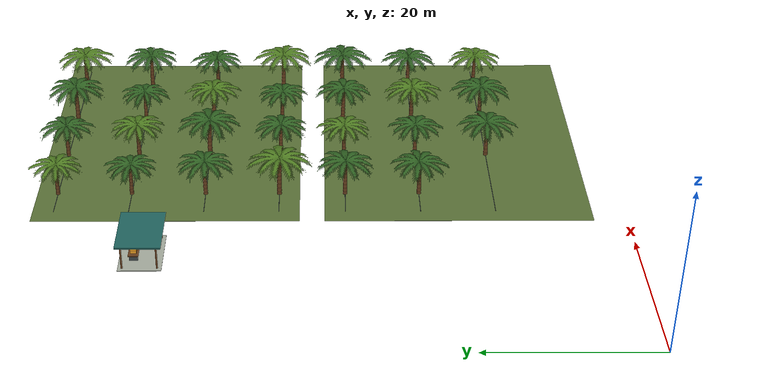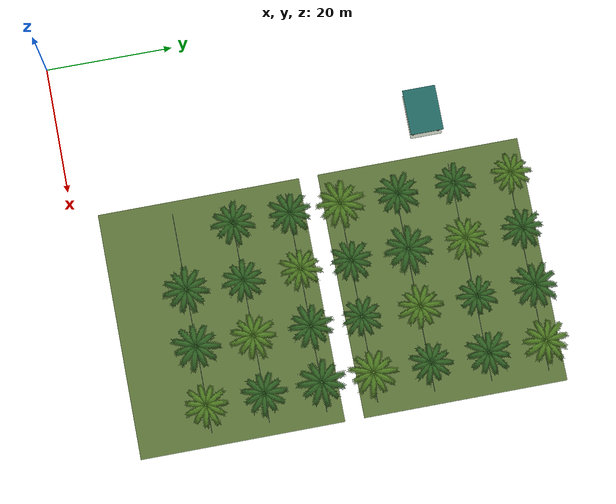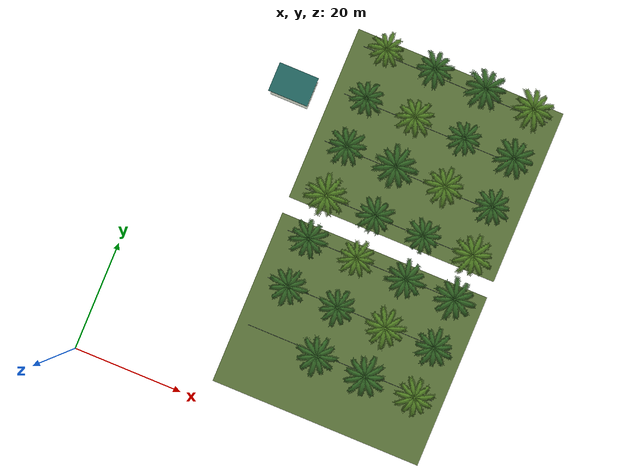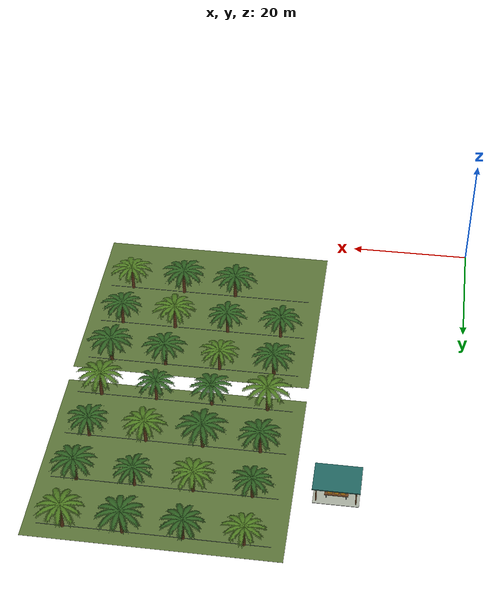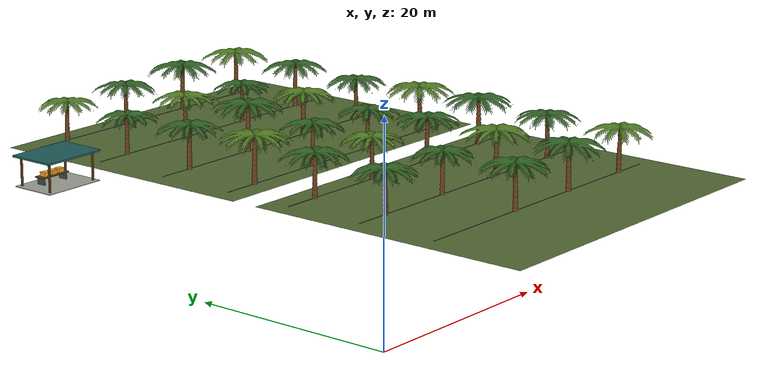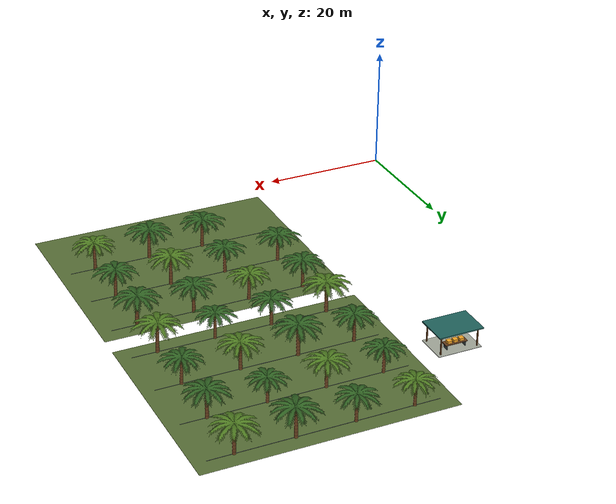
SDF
<sdf version="1.9">
 <world name="fleetscope_estate">
  <model name="plot_44_20">
   <static>true</static>
   <pose>44 20 0 0 0 0</pose>
   <link name="structure">
    <visual name="visual_0">
     <pose>0 0 0.008 0 0 0</pose>
     <geometry><box><size>39 32 0.016</size></box></geometry>
     <material>
      <ambient>0.34 0.43 0.21 1</ambient>
      <diffuse>0.34 0.43 0.21 1</diffuse>
      <specular>.08 .08 .08 1</specular>
     </material>
     <cast_shadows>false</cast_shadows>
    </visual>
    <collision name="collision_0">
     <pose>0 0 0.008 0 0 0</pose>
     <geometry><box><size>39 32 0.016</size></box></geometry>
    </collision>
   </link>
  </model>
  <model name="irrigation_44_20_1">
   <static>true</static>
   <pose>44 15.5 0 0 0 0</pose>
   <link name="structure">
    <visual name="visual_0">
     <pose>0 0 0.04 0 1.570796 0</pose>
     <geometry><cylinder><radius>0.035</radius><length>35</length></cylinder></geometry>
     <material>
      <ambient>0.25 0.29 0.3 1</ambient>
      <diffuse>0.25 0.29 0.3 1</diffuse>
      <specular>.08 .08 .08 1</specular>
     </material>
    </visual>
    <collision name="collision_0">
     <pose>0 0 0.04 0 1.570796 0</pose>
     <geometry><cylinder><radius>0.035</radius><length>35</length></cylinder></geometry>
    </collision>
   </link>
  </model>
  <model name="palm_037">
   <static>true</static>
   <pose>39.5 15.5 0 0 0 1.932879</pose>
   <link name="structure">
    <visual name="visual_0">
     <geometry>
      <mesh><uri>model://estate_palm/meshes/trunk.obj</uri><scale>1.047346 1.047346 1.047346</scale></mesh>
     </geometry>
     <material>
      <ambient>0.4 0.24 0.11 1</ambient>
      <diffuse>0.4 0.24 0.11 1</diffuse>
      <specular>.08 .08 .08 1</specular>
     </material>
    </visual>
    <visual name="visual_1">
     <geometry>
      <mesh><uri>model://estate_palm/meshes/fronds.obj</uri><scale>1.047346 1.047346 1.047346</scale></mesh>
     </geometry>
     <material>
      <ambient>0.17 0.36 0.12 1</ambient>
      <diffuse>0.17 0.36 0.12 1</diffuse>
      <specular>.08 .08 .08 1</specular>
     </material>
    </visual>
    <collision name="collision_2">
     <pose>0 0 2.356528 0 0 0</pose>
     <geometry>
      <cylinder><radius>0.2723099248789104</radius><length>4.713056392134988</length></cylinder>
     </geometry>
    </collision>
   </link>
  </model>
  <model name="palm_038">
   <static>true</static>
   <pose>48.5 15.5 0 0 0 3.153528</pose>
   <link name="structure">
    <visual name="visual_0">
     <geometry>
      <mesh><uri>model://estate_palm/meshes/trunk.obj</uri><scale>1.075956 1.075956 1.075956</scale></mesh>
     </geometry>
     <material>
      <ambient>0.4 0.24 0.11 1</ambient>
      <diffuse>0.4 0.24 0.11 1</diffuse>
      <specular>.08 .08 .08 1</specular>
     </material>
    </visual>
    <visual name="visual_1">
     <geometry>
      <mesh><uri>model://estate_palm/meshes/fronds.obj</uri><scale>1.075956 1.075956 1.075956</scale></mesh>
     </geometry>
     <material>
      <ambient>0.17 0.36 0.12 1</ambient>
      <diffuse>0.17 0.36 0.12 1</diffuse>
      <specular>.08 .08 .08 1</specular>
     </material>
    </visual>
    <collision name="collision_2">
     <pose>0 0 2.420902 0 0 0</pose>
     <geometry>
      <cylinder><radius>0.27974867455214686</radius><length>4.841803982633311</length></cylinder>
     </geometry>
    </collision>
   </link>
  </model>
  <model name="palm_039">
   <static>true</static>
   <pose>57.5 15.5 0 0 0 5.557164</pose>
   <link name="structure">
    <visual name="visual_0">
     <geometry>
      <mesh><uri>model://estate_palm/meshes/trunk.obj</uri><scale>1.005356 1.005356 1.005356</scale></mesh>
     </geometry>
     <material>
      <ambient>0.4 0.24 0.11 1</ambient>
      <diffuse>0.4 0.24 0.11 1</diffuse>
      <specular>.08 .08 .08 1</specular>
     </material>
    </visual>
    <visual name="visual_1">
     <geometry>
      <mesh><uri>model://estate_palm/meshes/fronds.obj</uri><scale>1.005356 1.005356 1.005356</scale></mesh>
     </geometry>
     <material>
      <ambient>0.29 0.46 0.12 1</ambient>
      <diffuse>0.29 0.46 0.12 1</diffuse>
      <specular>.08 .08 .08 1</specular>
     </material>
    </visual>
    <collision name="collision_2">
     <pose>0 0 2.262052 0 0 0</pose>
     <geometry>
      <cylinder><radius>0.2613926742258665</radius><length>4.524103976986151</length></cylinder>
     </geometry>
    </collision>
   </link>
  </model>
  <model name="irrigation_44_20_2">
   <static>true</static>
   <pose>44 24.5 0 0 0 0</pose>
   <link name="structure">
    <visual name="visual_0">
     <pose>0 0 0.04 0 1.570796 0</pose>
     <geometry><cylinder><radius>0.035</radius><length>35</length></cylinder></geometry>
     <material>
      <ambient>0.25 0.29 0.3 1</ambient>
      <diffuse>0.25 0.29 0.3 1</diffuse>
      <specular>.08 .08 .08 1</specular>
     </material>
    </visual>
    <collision name="collision_0">
     <pose>0 0 0.04 0 1.570796 0</pose>
     <geometry><cylinder><radius>0.035</radius><length>35</length></cylinder></geometry>
    </collision>
   </link>
  </model>
  <model name="palm_040">
   <static>true</static>
   <pose>30.5 24.5 0 0 0 1.849607</pose>
   <link name="structure">
    <visual name="visual_0">
     <geometry>
      <mesh><uri>model://estate_palm/meshes/trunk.obj</uri><scale>0.9952747 0.9952747 0.9952747</scale></mesh>
     </geometry>
     <material>
      <ambient>0.4 0.24 0.11 1</ambient>
      <diffuse>0.4 0.24 0.11 1</diffuse>
      <specular>.08 .08 .08 1</specular>
     </material>
    </visual>
    <visual name="visual_1">
     <geometry>
      <mesh><uri>model://estate_palm/meshes/fronds.obj</uri><scale>0.9952747 0.9952747 0.9952747</scale></mesh>
     </geometry>
     <material>
      <ambient>0.17 0.36 0.12 1</ambient>
      <diffuse>0.17 0.36 0.12 1</diffuse>
      <specular>.08 .08 .08 1</specular>
     </material>
    </visual>
    <collision name="collision_2">
     <pose>0 0 2.239368 0 0 0</pose>
     <geometry><cylinder><radius>0.2587714227645457</radius><length>4.47873616323252</length></cylinder></geometry>
    </collision>
   </link>
  </model>
  <model name="palm_041">
   <static>true</static>
   <pose>39.5 24.5 0 0 0 0.2080316</pose>
   <link name="structure">
    <visual name="visual_0">
     <geometry>
      <mesh><uri>model://estate_palm/meshes/trunk.obj</uri><scale>0.9591879 0.9591879 0.9591879</scale></mesh>
     </geometry>
     <material>
      <ambient>0.4 0.24 0.11 1</ambient>
      <diffuse>0.4 0.24 0.11 1</diffuse>
      <specular>.08 .08 .08 1</specular>
     </material>
    </visual>
    <visual name="visual_1">
     <geometry>
      <mesh><uri>model://estate_palm/meshes/fronds.obj</uri><scale>0.9591879 0.9591879 0.9591879</scale></mesh>
     </geometry>
     <material>
      <ambient>0.17 0.36 0.12 1</ambient>
      <diffuse>0.17 0.36 0.12 1</diffuse>
      <specular>.08 .08 .08 1</specular>
     </material>
    </visual>
    <collision name="collision_2">
     <pose>0 0 2.158173 0 0 0</pose>
     <geometry>
      <cylinder><radius>0.2493888555089432</radius><length>4.3163455761163245</length></cylinder>
     </geometry>
    </collision>
   </link>
  </model>
  <model name="palm_042">
   <static>true</static>
   <pose>48.5 24.5 0 0 0 3.752778</pose>
   <link name="structure">
    <visual name="visual_0">
     <geometry>
      <mesh><uri>model://estate_palm/meshes/trunk.obj</uri><scale>1.044241 1.044241 1.044241</scale></mesh>
     </geometry>
     <material>
      <ambient>0.4 0.24 0.11 1</ambient>
      <diffuse>0.4 0.24 0.11 1</diffuse>
      <specular>.08 .08 .08 1</specular>
     </material>
    </visual>
    <visual name="visual_1">
     <geometry>
      <mesh><uri>model://estate_palm/meshes/fronds.obj</uri><scale>1.044241 1.044241 1.044241</scale></mesh>
     </geometry>
     <material>
      <ambient>0.29 0.46 0.12 1</ambient>
      <diffuse>0.29 0.46 0.12 1</diffuse>
      <specular>.08 .08 .08 1</specular>
     </material>
    </visual>
    <collision name="collision_2">
     <pose>0 0 2.349543 0 0 0</pose>
     <geometry>
      <cylinder><radius>0.2715027629975437</radius><length>4.6990862826497946</length></cylinder>
     </geometry>
    </collision>
   </link>
  </model>
  <model name="palm_043">
   <static>true</static>
   <pose>57.5 24.5 0 0 0 3.285407</pose>
   <link name="structure">
    <visual name="visual_0">
     <geometry>
      <mesh><uri>model://estate_palm/meshes/trunk.obj</uri><scale>1.00081 1.00081 1.00081</scale></mesh>
     </geometry>
     <material>
      <ambient>0.4 0.24 0.11 1</ambient>
      <diffuse>0.4 0.24 0.11 1</diffuse>
      <specular>.08 .08 .08 1</specular>
     </material>
    </visual>
    <visual name="visual_1">
     <geometry>
      <mesh><uri>model://estate_palm/meshes/fronds.obj</uri><scale>1.00081 1.00081 1.00081</scale></mesh>
     </geometry>
     <material>
      <ambient>0.17 0.36 0.12 1</ambient>
      <diffuse>0.17 0.36 0.12 1</diffuse>
      <specular>.08 .08 .08 1</specular>
     </material>
    </visual>
    <collision name="collision_2">
     <pose>0 0 2.251823 0 0 0</pose>
     <geometry>
      <cylinder><radius>0.26021061037751203</radius><length>4.5036451796107855</length></cylinder>
     </geometry>
    </collision>
   </link>
  </model>
  <model name="irrigation_44_20_3">
   <static>true</static>
   <pose>44 33.5 0 0 0 0</pose>
   <link name="structure">
    <visual name="visual_0">
     <pose>0 0 0.04 0 1.570796 0</pose>
     <geometry><cylinder><radius>0.035</radius><length>35</length></cylinder></geometry>
     <material>
      <ambient>0.25 0.29 0.3 1</ambient>
      <diffuse>0.25 0.29 0.3 1</diffuse>
      <specular>.08 .08 .08 1</specular>
     </material>
    </visual>
    <collision name="collision_0">
     <pose>0 0 0.04 0 1.570796 0</pose>
     <geometry><cylinder><radius>0.035</radius><length>35</length></cylinder></geometry>
    </collision>
   </link>
  </model>
  <model name="palm_044">
   <static>true</static>
   <pose>30.5 33.5 0 0 0 5.790016</pose>
   <link name="structure">
    <visual name="visual_0">
     <geometry>
      <mesh><uri>model://estate_palm/meshes/trunk.obj</uri><scale>1.007694 1.007694 1.007694</scale></mesh>
     </geometry>
     <material>
      <ambient>0.4 0.24 0.11 1</ambient>
      <diffuse>0.4 0.24 0.11 1</diffuse>
      <specular>.08 .08 .08 1</specular>
     </material>
    </visual>
    <visual name="visual_1">
     <geometry>
      <mesh><uri>model://estate_palm/meshes/fronds.obj</uri><scale>1.007694 1.007694 1.007694</scale></mesh>
     </geometry>
     <material>
      <ambient>0.17 0.36 0.12 1</ambient>
      <diffuse>0.17 0.36 0.12 1</diffuse>
      <specular>.08 .08 .08 1</specular>
     </material>
    </visual>
    <collision name="collision_2">
     <pose>0 0 2.267311 0 0 0</pose>
     <geometry>
      <cylinder><radius>0.26200040257415425</radius><length>4.534622352244977</length></cylinder>
     </geometry>
    </collision>
   </link>
  </model>
  <model name="palm_045">
   <static>true</static>
   <pose>39.5 33.5 0 0 0 3.050921</pose>
   <link name="structure">
    <visual name="visual_0">
     <geometry>
      <mesh><uri>model://estate_palm/meshes/trunk.obj</uri><scale>0.9572243 0.9572243 0.9572243</scale></mesh>
     </geometry>
     <material>
      <ambient>0.4 0.24 0.11 1</ambient>
      <diffuse>0.4 0.24 0.11 1</diffuse>
      <specular>.08 .08 .08 1</specular>
     </material>
    </visual>
    <visual name="visual_1">
     <geometry>
      <mesh><uri>model://estate_palm/meshes/fronds.obj</uri><scale>0.9572243 0.9572243 0.9572243</scale></mesh>
     </geometry>
     <material>
      <ambient>0.29 0.46 0.12 1</ambient>
      <diffuse>0.29 0.46 0.12 1</diffuse>
      <specular>.08 .08 .08 1</specular>
     </material>
    </visual>
    <collision name="collision_2">
     <pose>0 0 2.153755 0 0 0</pose>
     <geometry>
      <cylinder><radius>0.24887832160308557</radius><length>4.307509412361096</length></cylinder>
     </geometry>
    </collision>
   </link>
  </model>
  <model name="palm_046">
   <static>true</static>
   <pose>48.5 33.5 0 0 0 5.191001</pose>
   <link name="structure">
    <visual name="visual_0">
     <geometry>
      <mesh><uri>model://estate_palm/meshes/trunk.obj</uri><scale>1.012479 1.012479 1.012479</scale></mesh>
     </geometry>
     <material>
      <ambient>0.4 0.24 0.11 1</ambient>
      <diffuse>0.4 0.24 0.11 1</diffuse>
      <specular>.08 .08 .08 1</specular>
     </material>
    </visual>
    <visual name="visual_1">
     <geometry>
      <mesh><uri>model://estate_palm/meshes/fronds.obj</uri><scale>1.012479 1.012479 1.012479</scale></mesh>
     </geometry>
     <material>
      <ambient>0.17 0.36 0.12 1</ambient>
      <diffuse>0.17 0.36 0.12 1</diffuse>
      <specular>.08 .08 .08 1</specular>
     </material>
    </visual>
    <collision name="collision_2">
     <pose>0 0 2.278077 0 0 0</pose>
     <geometry>
      <cylinder><radius>0.26324445988130146</radius><length>4.5561541133302175</length></cylinder>
     </geometry>
    </collision>
   </link>
  </model>
  <model name="palm_047">
   <static>true</static>
   <pose>57.5 33.5 0 0 0 3.505</pose>
   <link name="structure">
    <visual name="visual_0">
     <geometry>
      <mesh><uri>model://estate_palm/meshes/trunk.obj</uri><scale>1.077751 1.077751 1.077751</scale></mesh>
     </geometry>
     <material>
      <ambient>0.4 0.24 0.11 1</ambient>
      <diffuse>0.4 0.24 0.11 1</diffuse>
      <specular>.08 .08 .08 1</specular>
     </material>
    </visual>
    <visual name="visual_1">
     <geometry>
      <mesh><uri>model://estate_palm/meshes/fronds.obj</uri><scale>1.077751 1.077751 1.077751</scale></mesh>
     </geometry>
     <material>
      <ambient>0.17 0.36 0.12 1</ambient>
      <diffuse>0.17 0.36 0.12 1</diffuse>
      <specular>.08 .08 .08 1</specular>
     </material>
    </visual>
    <collision name="collision_2">
     <pose>0 0 2.42494 0 0 0</pose>
     <geometry>
      <cylinder><radius>0.28021527062682755</radius><length>4.849879683925861</length></cylinder>
     </geometry>
    </collision>
   </link>
  </model>
  <model name="plot_44_55">
   <static>true</static>
   <pose>44 55 0 0 0 0</pose>
   <link name="structure">
    <visual name="visual_0">
     <pose>0 0 0.008 0 0 0</pose>
     <geometry><box><size>39 32 0.016</size></box></geometry>
     <material>
      <ambient>0.34 0.43 0.21 1</ambient>
      <diffuse>0.34 0.43 0.21 1</diffuse>
      <specular>.08 .08 .08 1</specular>
     </material>
     <cast_shadows>false</cast_shadows>
    </visual>
    <collision name="collision_0">
     <pose>0 0 0.008 0 0 0</pose>
     <geometry><box><size>39 32 0.016</size></box></geometry>
    </collision>
   </link>
  </model>
  <model name="irrigation_44_55_0">
   <static>true</static>
   <pose>44 41.5 0 0 0 0</pose>
   <link name="structure">
    <visual name="visual_0">
     <pose>0 0 0.04 0 1.570796 0</pose>
     <geometry><cylinder><radius>0.035</radius><length>35</length></cylinder></geometry>
     <material>
      <ambient>0.25 0.29 0.3 1</ambient>
      <diffuse>0.25 0.29 0.3 1</diffuse>
      <specular>.08 .08 .08 1</specular>
     </material>
    </visual>
    <collision name="collision_0">
     <pose>0 0 0.04 0 1.570796 0</pose>
     <geometry><cylinder><radius>0.035</radius><length>35</length></cylinder></geometry>
    </collision>
   </link>
  </model>
  <model name="palm_048">
   <static>true</static>
   <pose>30.5 41.5 0 0 0 5.223859</pose>
   <link name="structure">
    <visual name="visual_0">
     <geometry>
      <mesh><uri>model://estate_palm/meshes/trunk.obj</uri><scale>1.099599 1.099599 1.099599</scale></mesh>
     </geometry>
     <material>
      <ambient>0.4 0.24 0.11 1</ambient>
      <diffuse>0.4 0.24 0.11 1</diffuse>
      <specular>.08 .08 .08 1</specular>
     </material>
    </visual>
    <visual name="visual_1">
     <geometry>
      <mesh><uri>model://estate_palm/meshes/fronds.obj</uri><scale>1.099599 1.099599 1.099599</scale></mesh>
     </geometry>
     <material>
      <ambient>0.29 0.46 0.12 1</ambient>
      <diffuse>0.29 0.46 0.12 1</diffuse>
      <specular>.08 .08 .08 1</specular>
     </material>
    </visual>
    <collision name="collision_2">
     <pose>0 0 2.474097 0 0 0</pose>
     <geometry>
      <cylinder><radius>0.28589562790932554</radius><length>4.948193559969096</length></cylinder>
     </geometry>
    </collision>
   </link>
  </model>
  <model name="palm_049">
   <static>true</static>
   <pose>39.5 41.5 0 0 0 5.760498</pose>
   <link name="structure">
    <visual name="visual_0">
     <geometry>
      <mesh><uri>model://estate_palm/meshes/trunk.obj</uri><scale>0.9696646 0.9696646 0.9696646</scale></mesh>
     </geometry>
     <material>
      <ambient>0.4 0.24 0.11 1</ambient>
      <diffuse>0.4 0.24 0.11 1</diffuse>
      <specular>.08 .08 .08 1</specular>
     </material>
    </visual>
    <visual name="visual_1">
     <geometry>
      <mesh><uri>model://estate_palm/meshes/fronds.obj</uri><scale>0.9696646 0.9696646 0.9696646</scale></mesh>
     </geometry>
     <material>
      <ambient>0.17 0.36 0.12 1</ambient>
      <diffuse>0.17 0.36 0.12 1</diffuse>
      <specular>.08 .08 .08 1</specular>
     </material>
    </visual>
    <collision name="collision_2">
     <pose>0 0 2.181745 0 0 0</pose>
     <geometry>
      <cylinder><radius>0.2521127865208529</radius><length>4.363490535937839</length></cylinder>
     </geometry>
    </collision>
   </link>
  </model>
  <model name="palm_050">
   <static>true</static>
   <pose>48.5 41.5 0 0 0 4.331208</pose>
   <link name="structure">
    <visual name="visual_0">
     <geometry>
      <mesh><uri>model://estate_palm/meshes/trunk.obj</uri><scale>0.9216423 0.9216423 0.9216423</scale></mesh>
     </geometry>
     <material>
      <ambient>0.4 0.24 0.11 1</ambient>
      <diffuse>0.4 0.24 0.11 1</diffuse>
      <specular>.08 .08 .08 1</specular>
     </material>
    </visual>
    <visual name="visual_1">
     <geometry>
      <mesh><uri>model://estate_palm/meshes/fronds.obj</uri><scale>0.9216423 0.9216423 0.9216423</scale></mesh>
     </geometry>
     <material>
      <ambient>0.17 0.36 0.12 1</ambient>
      <diffuse>0.17 0.36 0.12 1</diffuse>
      <specular>.08 .08 .08 1</specular>
     </material>
    </visual>
    <collision name="collision_2">
     <pose>0 0 2.073695 0 0 0</pose>
     <geometry>
      <cylinder><radius>0.2396269922307089</radius><length>4.147390250146885</length></cylinder>
     </geometry>
    </collision>
   </link>
  </model>
  <model name="palm_051">
   <static>true</static>
   <pose>57.5 41.5 0 0 0 3.23693</pose>
   <link name="structure">
    <visual name="visual_0">
     <geometry>
      <mesh><uri>model://estate_palm/meshes/trunk.obj</uri><scale>1.072718 1.072718 1.072718</scale></mesh>
     </geometry>
     <material>
      <ambient>0.4 0.24 0.11 1</ambient>
      <diffuse>0.4 0.24 0.11 1</diffuse>
      <specular>.08 .08 .08 1</specular>
     </material>
    </visual>
    <visual name="visual_1">
     <geometry>
      <mesh><uri>model://estate_palm/meshes/fronds.obj</uri><scale>1.072718 1.072718 1.072718</scale></mesh>
     </geometry>
     <material>
      <ambient>0.29 0.46 0.12 1</ambient>
      <diffuse>0.29 0.46 0.12 1</diffuse>
      <specular>.08 .08 .08 1</specular>
     </material>
    </visual>
    <collision name="collision_2">
     <pose>0 0 2.413617 0 0 0</pose>
     <geometry>
      <cylinder><radius>0.27890680658697314</radius><length>4.827233190928381</length></cylinder>
     </geometry>
    </collision>
   </link>
  </model>
  <model name="irrigation_44_55_1">
   <static>true</static>
   <pose>44 50.5 0 0 0 0</pose>
   <link name="structure">
    <visual name="visual_0">
     <pose>0 0 0.04 0 1.570796 0</pose>
     <geometry><cylinder><radius>0.035</radius><length>35</length></cylinder></geometry>
     <material>
      <ambient>0.25 0.29 0.3 1</ambient>
      <diffuse>0.25 0.29 0.3 1</diffuse>
      <specular>.08 .08 .08 1</specular>
     </material>
    </visual>
    <collision name="collision_0">
     <pose>0 0 0.04 0 1.570796 0</pose>
     <geometry><cylinder><radius>0.035</radius><length>35</length></cylinder></geometry>
    </collision>
   </link>
  </model>
  <model name="palm_052">
   <static>true</static>
   <pose>30.5 50.5 0 0 0 6.064959</pose>
   <link name="structure">
    <visual name="visual_0">
     <geometry>
      <mesh><uri>model://estate_palm/meshes/trunk.obj</uri><scale>0.9996426 0.9996426 0.9996426</scale></mesh>
     </geometry>
     <material>
      <ambient>0.4 0.24 0.11 1</ambient>
      <diffuse>0.4 0.24 0.11 1</diffuse>
      <specular>.08 .08 .08 1</specular>
     </material>
    </visual>
    <visual name="visual_1">
     <geometry>
      <mesh><uri>model://estate_palm/meshes/fronds.obj</uri><scale>0.9996426 0.9996426 0.9996426</scale></mesh>
     </geometry>
     <material>
      <ambient>0.17 0.36 0.12 1</ambient>
      <diffuse>0.17 0.36 0.12 1</diffuse>
      <specular>.08 .08 .08 1</specular>
     </material>
    </visual>
    <collision name="collision_2">
     <pose>0 0 2.249196 0 0 0</pose>
     <geometry>
      <cylinder><radius>0.25990706429732385</radius><length>4.498391497453682</length></cylinder>
     </geometry>
    </collision>
   </link>
  </model>
  <model name="palm_053">
   <static>true</static>
   <pose>39.5 50.5 0 0 0 5.293205</pose>
   <link name="structure">
    <visual name="visual_0">
     <geometry>
      <mesh><uri>model://estate_palm/meshes/trunk.obj</uri><scale>1.112799 1.112799 1.112799</scale></mesh>
     </geometry>
     <material>
      <ambient>0.4 0.24 0.11 1</ambient>
      <diffuse>0.4 0.24 0.11 1</diffuse>
      <specular>.08 .08 .08 1</specular>
     </material>
    </visual>
    <visual name="visual_1">
     <geometry>
      <mesh><uri>model://estate_palm/meshes/fronds.obj</uri><scale>1.112799 1.112799 1.112799</scale></mesh>
     </geometry>
     <material>
      <ambient>0.17 0.36 0.12 1</ambient>
      <diffuse>0.17 0.36 0.12 1</diffuse>
      <specular>.08 .08 .08 1</specular>
     </material>
    </visual>
    <collision name="collision_2">
     <pose>0 0 2.503798 0 0 0</pose>
     <geometry>
      <cylinder><radius>0.28932771728302853</radius><length>5.007595106821648</length></cylinder>
     </geometry>
    </collision>
   </link>
  </model>
  <model name="palm_054">
   <static>true</static>
   <pose>48.5 50.5 0 0 0 0.4039784</pose>
   <link name="structure">
    <visual name="visual_0">
     <geometry>
      <mesh><uri>model://estate_palm/meshes/trunk.obj</uri><scale>1.005412 1.005412 1.005412</scale></mesh>
     </geometry>
     <material>
      <ambient>0.4 0.24 0.11 1</ambient>
      <diffuse>0.4 0.24 0.11 1</diffuse>
      <specular>.08 .08 .08 1</specular>
     </material>
    </visual>
    <visual name="visual_1">
     <geometry>
      <mesh><uri>model://estate_palm/meshes/fronds.obj</uri><scale>1.005412 1.005412 1.005412</scale></mesh>
     </geometry>
     <material>
      <ambient>0.29 0.46 0.12 1</ambient>
      <diffuse>0.29 0.46 0.12 1</diffuse>
      <specular>.08 .08 .08 1</specular>
     </material>
    </visual>
    <collision name="collision_2">
     <pose>0 0 2.262177 0 0 0</pose>
     <geometry>
      <cylinder><radius>0.26140716545116816</radius><length>4.5243547866548335</length></cylinder>
     </geometry>
    </collision>
   </link>
  </model>
  <model name="palm_055">
   <static>true</static>
   <pose>57.5 50.5 0 0 0 3.13167</pose>
   <link name="structure">
    <visual name="visual_0">
     <geometry>
      <mesh><uri>model://estate_palm/meshes/trunk.obj</uri><scale>0.9586226 0.9586226 0.9586226</scale></mesh>
     </geometry>
     <material>
      <ambient>0.4 0.24 0.11 1</ambient>
      <diffuse>0.4 0.24 0.11 1</diffuse>
      <specular>.08 .08 .08 1</specular>
     </material>
    </visual>
    <visual name="visual_1">
     <geometry>
      <mesh><uri>model://estate_palm/meshes/fronds.obj</uri><scale>0.9586226 0.9586226 0.9586226</scale></mesh>
     </geometry>
     <material>
      <ambient>0.17 0.36 0.12 1</ambient>
      <diffuse>0.17 0.36 0.12 1</diffuse>
      <specular>.08 .08 .08 1</specular>
     </material>
    </visual>
    <collision name="collision_2">
     <pose>0 0 2.156901 0 0 0</pose>
     <geometry><cylinder><radius>0.249241863209506</radius><length>4.313801478626066</length></cylinder></geometry>
    </collision>
   </link>
  </model>
  <model name="irrigation_44_55_2">
   <static>true</static>
   <pose>44 59.5 0 0 0 0</pose>
   <link name="structure">
    <visual name="visual_0">
     <pose>0 0 0.04 0 1.570796 0</pose>
     <geometry><cylinder><radius>0.035</radius><length>35</length></cylinder></geometry>
     <material>
      <ambient>0.25 0.29 0.3 1</ambient>
      <diffuse>0.25 0.29 0.3 1</diffuse>
      <specular>.08 .08 .08 1</specular>
     </material>
    </visual>
    <collision name="collision_0">
     <pose>0 0 0.04 0 1.570796 0</pose>
     <geometry><cylinder><radius>0.035</radius><length>35</length></cylinder></geometry>
    </collision>
   </link>
  </model>
  <model name="palm_056">
   <static>true</static>
   <pose>30.5 59.5 0 0 0 4.697003</pose>
   <link name="structure">
    <visual name="visual_0">
     <geometry>
      <mesh><uri>model://estate_palm/meshes/trunk.obj</uri><scale>0.9212658 0.9212658 0.9212658</scale></mesh>
     </geometry>
     <material>
      <ambient>0.4 0.24 0.11 1</ambient>
      <diffuse>0.4 0.24 0.11 1</diffuse>
      <specular>.08 .08 .08 1</specular>
     </material>
    </visual>
    <visual name="visual_1">
     <geometry>
      <mesh><uri>model://estate_palm/meshes/fronds.obj</uri><scale>0.9212658 0.9212658 0.9212658</scale></mesh>
     </geometry>
     <material>
      <ambient>0.17 0.36 0.12 1</ambient>
      <diffuse>0.17 0.36 0.12 1</diffuse>
      <specular>.08 .08 .08 1</specular>
     </material>
    </visual>
    <collision name="collision_2">
     <pose>0 0 2.072848 0 0 0</pose>
     <geometry>
      <cylinder><radius>0.23952909758337107</radius><length>4.145695919712192</length></cylinder>
     </geometry>
    </collision>
   </link>
  </model>
  <model name="palm_057">
   <static>true</static>
   <pose>39.5 59.5 0 0 0 2.823631</pose>
   <link name="structure">
    <visual name="visual_0">
     <geometry>
      <mesh><uri>model://estate_palm/meshes/trunk.obj</uri><scale>0.9904884 0.9904884 0.9904884</scale></mesh>
     </geometry>
     <material>
      <ambient>0.4 0.24 0.11 1</ambient>
      <diffuse>0.4 0.24 0.11 1</diffuse>
      <specular>.08 .08 .08 1</specular>
     </material>
    </visual>
    <visual name="visual_1">
     <geometry>
      <mesh><uri>model://estate_palm/meshes/fronds.obj</uri><scale>0.9904884 0.9904884 0.9904884</scale></mesh>
     </geometry>
     <material>
      <ambient>0.29 0.46 0.12 1</ambient>
      <diffuse>0.29 0.46 0.12 1</diffuse>
      <specular>.08 .08 .08 1</specular>
     </material>
    </visual>
    <collision name="collision_2">
     <pose>0 0 2.228599 0 0 0</pose>
     <geometry>
      <cylinder><radius>0.25752697992005735</radius><length>4.457197729385608</length></cylinder>
     </geometry>
    </collision>
   </link>
  </model>
  <model name="palm_058">
   <static>true</static>
   <pose>48.5 59.5 0 0 0 0.001344408</pose>
   <link name="structure">
    <visual name="visual_0">
     <geometry>
      <mesh><uri>model://estate_palm/meshes/trunk.obj</uri><scale>0.9030872 0.9030872 0.9030872</scale></mesh>
     </geometry>
     <material>
      <ambient>0.4 0.24 0.11 1</ambient>
      <diffuse>0.4 0.24 0.11 1</diffuse>
      <specular>.08 .08 .08 1</specular>
     </material>
    </visual>
    <visual name="visual_1">
     <geometry>
      <mesh><uri>model://estate_palm/meshes/fronds.obj</uri><scale>0.9030872 0.9030872 0.9030872</scale></mesh>
     </geometry>
     <material>
      <ambient>0.17 0.36 0.12 1</ambient>
      <diffuse>0.17 0.36 0.12 1</diffuse>
      <specular>.08 .08 .08 1</specular>
     </material>
    </visual>
    <collision name="collision_2">
     <pose>0 0 2.031946 0 0 0</pose>
     <geometry>
      <cylinder><radius>0.23480266148203646</radius><length>4.0638922179583234</length></cylinder>
     </geometry>
    </collision>
   </link>
  </model>
  <model name="palm_059">
   <static>true</static>
   <pose>57.5 59.5 0 0 0 5.857049</pose>
   <link name="structure">
    <visual name="visual_0">
     <geometry>
      <mesh><uri>model://estate_palm/meshes/trunk.obj</uri><scale>1.027741 1.027741 1.027741</scale></mesh>
     </geometry>
     <material>
      <ambient>0.4 0.24 0.11 1</ambient>
      <diffuse>0.4 0.24 0.11 1</diffuse>
      <specular>.08 .08 .08 1</specular>
     </material>
    </visual>
    <visual name="visual_1">
     <geometry>
      <mesh><uri>model://estate_palm/meshes/fronds.obj</uri><scale>1.027741 1.027741 1.027741</scale></mesh>
     </geometry>
     <material>
      <ambient>0.17 0.36 0.12 1</ambient>
      <diffuse>0.17 0.36 0.12 1</diffuse>
      <specular>.08 .08 .08 1</specular>
     </material>
    </visual>
    <collision name="collision_2">
     <pose>0 0 2.312417 0 0 0</pose>
     <geometry>
      <cylinder><radius>0.26721260755706566</radius><length>4.624833592333829</length></cylinder>
     </geometry>
    </collision>
   </link>
  </model>
  <model name="irrigation_44_55_3">
   <static>true</static>
   <pose>44 68.5 0 0 0 0</pose>
   <link name="structure">
    <visual name="visual_0">
     <pose>0 0 0.04 0 1.570796 0</pose>
     <geometry><cylinder><radius>0.035</radius><length>35</length></cylinder></geometry>
     <material>
      <ambient>0.25 0.29 0.3 1</ambient>
      <diffuse>0.25 0.29 0.3 1</diffuse>
      <specular>.08 .08 .08 1</specular>
     </material>
    </visual>
    <collision name="collision_0">
     <pose>0 0 0.04 0 1.570796 0</pose>
     <geometry><cylinder><radius>0.035</radius><length>35</length></cylinder></geometry>
    </collision>
   </link>
  </model>
  <model name="palm_060">
   <static>true</static>
   <pose>30.5 68.5 0 0 0 4.987408</pose>
   <link name="structure">
    <visual name="visual_0">
     <geometry>
      <mesh><uri>model://estate_palm/meshes/trunk.obj</uri><scale>0.9182744 0.9182744 0.9182744</scale></mesh>
     </geometry>
     <material>
      <ambient>0.4 0.24 0.11 1</ambient>
      <diffuse>0.4 0.24 0.11 1</diffuse>
      <specular>.08 .08 .08 1</specular>
     </material>
    </visual>
    <visual name="visual_1">
     <geometry>
      <mesh><uri>model://estate_palm/meshes/fronds.obj</uri><scale>0.9182744 0.9182744 0.9182744</scale></mesh>
     </geometry>
     <material>
      <ambient>0.29 0.46 0.12 1</ambient>
      <diffuse>0.29 0.46 0.12 1</diffuse>
      <specular>.08 .08 .08 1</specular>
     </material>
    </visual>
    <collision name="collision_2">
     <pose>0 0 2.066117 0 0 0</pose>
     <geometry>
      <cylinder><radius>0.23875135040357448</radius><length>4.132234910831096</length></cylinder>
     </geometry>
    </collision>
   </link>
  </model>
  <model name="palm_061">
   <static>true</static>
   <pose>39.5 68.5 0 0 0 3.902327</pose>
   <link name="structure">
    <visual name="visual_0">
     <geometry>
      <mesh><uri>model://estate_palm/meshes/trunk.obj</uri><scale>0.9545243 0.9545243 0.9545243</scale></mesh>
     </geometry>
     <material>
      <ambient>0.4 0.24 0.11 1</ambient>
      <diffuse>0.4 0.24 0.11 1</diffuse>
      <specular>.08 .08 .08 1</specular>
     </material>
    </visual>
    <visual name="visual_1">
     <geometry>
      <mesh><uri>model://estate_palm/meshes/fronds.obj</uri><scale>0.9545243 0.9545243 0.9545243</scale></mesh>
     </geometry>
     <material>
      <ambient>0.17 0.36 0.12 1</ambient>
      <diffuse>0.17 0.36 0.12 1</diffuse>
      <specular>.08 .08 .08 1</specular>
     </material>
    </visual>
    <collision name="collision_2">
     <pose>0 0 2.14768 0 0 0</pose>
     <geometry>
      <cylinder><radius>0.24817631137453647</radius><length>4.295359235328515</length></cylinder>
     </geometry>
    </collision>
   </link>
  </model>
  <model name="palm_062">
   <static>true</static>
   <pose>48.5 68.5 0 0 0 6.00903</pose>
   <link name="structure">
    <visual name="visual_0">
     <geometry>
      <mesh><uri>model://estate_palm/meshes/trunk.obj</uri><scale>1.065408 1.065408 1.065408</scale></mesh>
     </geometry>
     <material>
      <ambient>0.4 0.24 0.11 1</ambient>
      <diffuse>0.4 0.24 0.11 1</diffuse>
      <specular>.08 .08 .08 1</specular>
     </material>
    </visual>
    <visual name="visual_1">
     <geometry>
      <mesh><uri>model://estate_palm/meshes/fronds.obj</uri><scale>1.065408 1.065408 1.065408</scale></mesh>
     </geometry>
     <material>
      <ambient>0.17 0.36 0.12 1</ambient>
      <diffuse>0.17 0.36 0.12 1</diffuse>
      <specular>.08 .08 .08 1</specular>
     </material>
    </visual>
    <collision name="collision_2">
     <pose>0 0 2.397168 0 0 0</pose>
     <geometry>
      <cylinder><radius>0.2770061062817042</radius><length>4.7943364548756495</length></cylinder>
     </geometry>
    </collision>
   </link>
  </model>
  <model name="palm_063">
   <static>true</static>
   <pose>57.5 68.5 0 0 0 3.992389</pose>
   <link name="structure">
    <visual name="visual_0">
     <geometry>
      <mesh><uri>model://estate_palm/meshes/trunk.obj</uri><scale>1.047065 1.047065 1.047065</scale></mesh>
     </geometry>
     <material>
      <ambient>0.4 0.24 0.11 1</ambient>
      <diffuse>0.4 0.24 0.11 1</diffuse>
      <specular>.08 .08 .08 1</specular>
     </material>
    </visual>
    <visual name="visual_1">
     <geometry>
      <mesh><uri>model://estate_palm/meshes/fronds.obj</uri><scale>1.047065 1.047065 1.047065</scale></mesh>
     </geometry>
     <material>
      <ambient>0.29 0.46 0.12 1</ambient>
      <diffuse>0.29 0.46 0.12 1</diffuse>
      <specular>.08 .08 .08 1</specular>
     </material>
    </visual>
    <collision name="collision_2">
     <pose>0 0 2.355896 0 0 0</pose>
     <geometry>
      <cylinder><radius>0.27223689189954275</radius><length>4.711792359799778</length></cylinder>
     </geometry>
    </collision>
   </link>
  </model>
  <model name="collection_east">
   <static>true</static>
   <pose>18 57 0 0 0 0</pose>
   <link name="structure">
    <visual name="visual_0">
     <pose>0 0 0.04 0 0 0</pose>
     <geometry><box><size>7 5 0.08</size></box></geometry>
     <material>
      <ambient>0.63 0.65 0.6 1</ambient>
      <diffuse>0.63 0.65 0.6 1</diffuse>
      <specular>.08 .08 .08 1</specular>
     </material>
     <cast_shadows>false</cast_shadows>
    </visual>
    <collision name="collision_0">
     <pose>0 0 0.04 0 0 0</pose>
     <geometry><box><size>7 5 0.08</size></box></geometry>
    </collision>
    <visual name="visual_1">
     <pose>-3 -2 1.55 0 0 0</pose>
     <geometry><box><size>0.18 0.18 3.1</size></box></geometry>
     <material>
      <ambient>0.4 0.24 0.11 1</ambient>
      <diffuse>0.4 0.24 0.11 1</diffuse>
      <specular>.08 .08 .08 1</specular>
     </material>
    </visual>
    <collision name="collision_1">
     <pose>-3 -2 1.55 0 0 0</pose>
     <geometry><box><size>0.18 0.18 3.1</size></box></geometry>
    </collision>
    <visual name="visual_2">
     <pose>-3 2 1.55 0 0 0</pose>
     <geometry><box><size>0.18 0.18 3.1</size></box></geometry>
     <material>
      <ambient>0.4 0.24 0.11 1</ambient>
      <diffuse>0.4 0.24 0.11 1</diffuse>
      <specular>.08 .08 .08 1</specular>
     </material>
    </visual>
    <collision name="collision_2">
     <pose>-3 2 1.55 0 0 0</pose>
     <geometry><box><size>0.18 0.18 3.1</size></box></geometry>
    </collision>
    <visual name="visual_3">
     <pose>3 -2 1.55 0 0 0</pose>
     <geometry><box><size>0.18 0.18 3.1</size></box></geometry>
     <material>
      <ambient>0.4 0.24 0.11 1</ambient>
      <diffuse>0.4 0.24 0.11 1</diffuse>
      <specular>.08 .08 .08 1</specular>
     </material>
    </visual>
    <collision name="collision_3">
     <pose>3 -2 1.55 0 0 0</pose>
     <geometry><box><size>0.18 0.18 3.1</size></box></geometry>
    </collision>
    <visual name="visual_4">
     <pose>3 2 1.55 0 0 0</pose>
     <geometry><box><size>0.18 0.18 3.1</size></box></geometry>
     <material>
      <ambient>0.4 0.24 0.11 1</ambient>
      <diffuse>0.4 0.24 0.11 1</diffuse>
      <specular>.08 .08 .08 1</specular>
     </material>
    </visual>
    <collision name="collision_4">
     <pose>3 2 1.55 0 0 0</pose>
     <geometry><box><size>0.18 0.18 3.1</size></box></geometry>
    </collision>
    <visual name="visual_5">
     <pose>0 0 3.2 0 0 0</pose>
     <geometry><box><size>7.2 5.2 0.2</size></box></geometry>
     <material>
      <ambient>0.12 0.38 0.36 1</ambient>
      <diffuse>0.12 0.38 0.36 1</diffuse>
      <specular>.08 .08 .08 1</specular>
     </material>
    </visual>
    <collision name="collision_5">
     <pose>0 0 3.2 0 0 0</pose>
     <geometry><box><size>7.2 5.2 0.2</size></box></geometry>
    </collision>
    <visual name="visual_6">
     <pose>0 0.8 0.85 0 0 0</pose>
     <geometry><box><size>3.6 1.2 0.12</size></box></geometry>
     <material>
      <ambient>0.4 0.24 0.11 1</ambient>
      <diffuse>0.4 0.24 0.11 1</diffuse>
      <specular>.08 .08 .08 1</specular>
     </material>
    </visual>
    <collision name="collision_6">
     <pose>0 0.8 0.85 0 0 0</pose>
     <geometry><box><size>3.6 1.2 0.12</size></box></geometry>
    </collision>
    <visual name="visual_7">
     <pose>-1.5 0.8 0.4 0 0 0</pose>
     <geometry><box><size>0.12 1 0.8</size></box></geometry>
     <material>
      <ambient>0.25 0.29 0.3 1</ambient>
      <diffuse>0.25 0.29 0.3 1</diffuse>
      <specular>.08 .08 .08 1</specular>
     </material>
    </visual>
    <collision name="collision_7">
     <pose>-1.5 0.8 0.4 0 0 0</pose>
     <geometry><box><size>0.12 1 0.8</size></box></geometry>
    </collision>
    <visual name="visual_8">
     <pose>1.5 0.8 0.4 0 0 0</pose>
     <geometry><box><size>0.12 1 0.8</size></box></geometry>
     <material>
      <ambient>0.25 0.29 0.3 1</ambient>
      <diffuse>0.25 0.29 0.3 1</diffuse>
      <specular>.08 .08 .08 1</specular>
     </material>
    </visual>
    <collision name="collision_8">
     <pose>1.5 0.8 0.4 0 0 0</pose>
     <geometry><box><size>0.12 1 0.8</size></box></geometry>
    </collision>
    <visual name="visual_9">
     <pose>-1 0.8 1.12 0 0 0</pose>
     <geometry><box><size>0.7 0.7 0.45</size></box></geometry>
     <material>
      <ambient>0.95 0.64 0.13 1</ambient>
      <diffuse>0.95 0.64 0.13 1</diffuse>
      <specular>.08 .08 .08 1</specular>
     </material>
    </visual>
    <collision name="collision_9">
     <pose>-1 0.8 1.12 0 0 0</pose>
     <geometry><box><size>0.7 0.7 0.45</size></box></geometry>
    </collision>
    <visual name="visual_10">
     <pose>0 0.8 1.12 0 0 0</pose>
     <geometry><box><size>0.7 0.7 0.45</size></box></geometry>
     <material>
      <ambient>0.95 0.64 0.13 1</ambient>
      <diffuse>0.95 0.64 0.13 1</diffuse>
      <specular>.08 .08 .08 1</specular>
     </material>
    </visual>
    <collision name="collision_10">
     <pose>0 0.8 1.12 0 0 0</pose>
     <geometry><box><size>0.7 0.7 0.45</size></box></geometry>
    </collision>
    <visual name="visual_11">
     <pose>1 0.8 1.12 0 0 0</pose>
     <geometry><box><size>0.7 0.7 0.45</size></box></geometry>
     <material>
      <ambient>0.95 0.64 0.13 1</ambient>
      <diffuse>0.95 0.64 0.13 1</diffuse>
      <specular>.08 .08 .08 1</specular>
     </material>
    </visual>
    <collision name="collision_11">
     <pose>1 0.8 1.12 0 0 0</pose>
     <geometry><box><size>0.7 0.7 0.45</size></box></geometry>
    </collision>
   </link>
  </model>
 </world>
</sdf>
